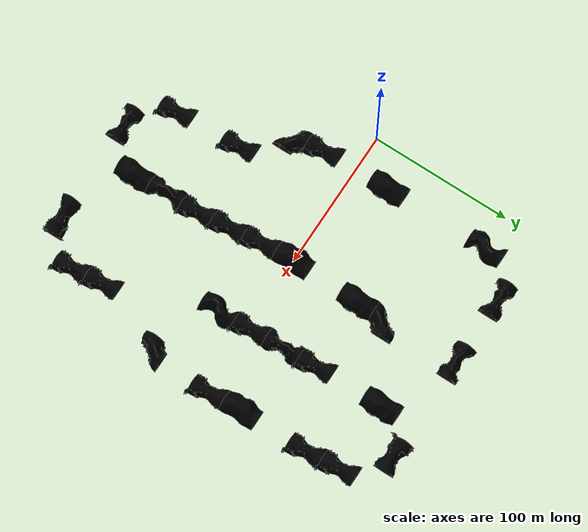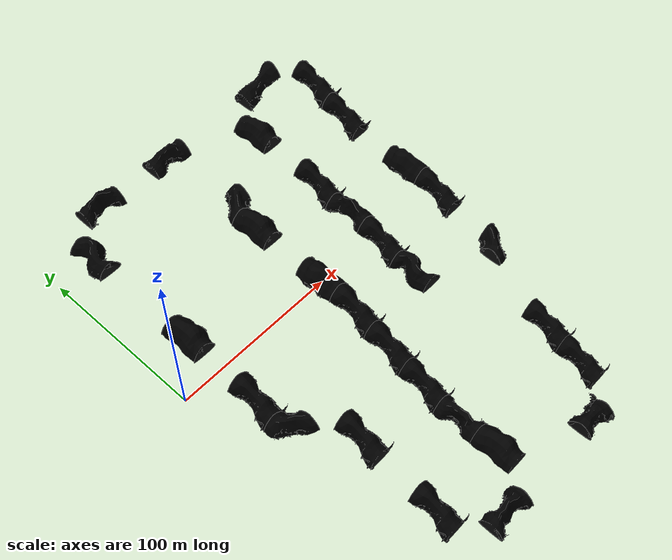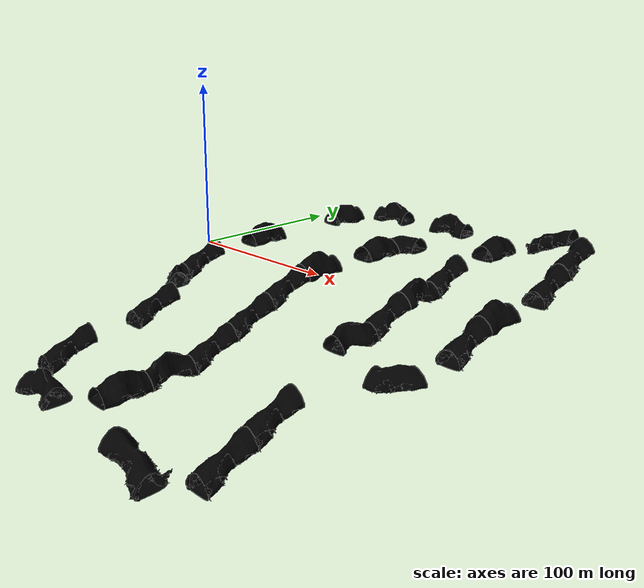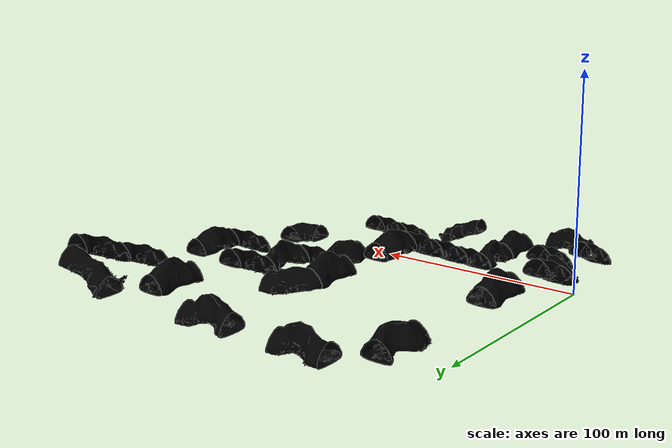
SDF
<sdf version="1.6">
 <world name="simple_cave_02">
  <physics name="1ms" type="ode">
   <max_step_size>0.004</max_step_size>
   <real_time_factor>1.0</real_time_factor>
  </physics>
  <plugin name="ignition::gazebo::systems::Physics" filename="libignition-gazebo-physics-system.so"/>
  <plugin name="ignition::gazebo::systems::UserCommands" filename="libignition-gazebo-user-commands-system.so"/>
  <plugin name="ignition::gazebo::systems::SceneBroadcaster" filename="libignition-gazebo-scene-broadcaster-system.so"/>
  <plugin name="ignition::gazebo::systems::Sensors" filename="libignition-gazebo-sensors-system.so">
   <render_engine>ogre2</render_engine>
  </plugin>
  <plugin name="ignition::gazebo::systems::Imu" filename="libignition-gazebo-imu-system.so"/>
  <scene>
   <ambient>0.35 0.35 0.35 1.0</ambient>
   <background>0.08 0.08 0.08 1.0</background>
   <grid>false</grid>
   <origin_visual>false</origin_visual>
  </scene>
  <atmosphere type="adiabatic">
   <temperature>288</temperature>
   <temperature_gradient>0.3</temperature_gradient>
  </atmosphere>
  <include>
   <name>tile_3</name>
   <uri>https://fuel.ignitionrobotics.org/1.0/OpenRobotics/models/Cave Straight 02 Type B</uri>
   <pose>50.000000 125.000000 0.000000 0 0 1.570796</pose>
  </include>
  <include>
   <name>tile_5</name>
   <uri>https://fuel.ignitionrobotics.org/1.0/OpenRobotics/models/Cave Straight 02 Type B</uri>
   <pose>100.000000 125.000000 0.000000 0 0 -1.570796</pose>
  </include>
  <include>
   <name>tile_8</name>
   <uri>https://fuel.ignitionrobotics.org/1.0/OpenRobotics/models/Cave Elevation Type B</uri>
   <pose>175.000000 125.000000 0.000000 0 0 1.570796</pose>
  </include>
  <include>
   <name>tile_11</name>
   <uri>https://fuel.ignitionrobotics.org/1.0/OpenRobotics/models/Cave Straight 03 Type B</uri>
   <pose>25.000000 100.000000 0.000000 0 0 0.000000</pose>
  </include>
  <include>
   <name>tile_12</name>
   <uri>https://fuel.ignitionrobotics.org/1.0/OpenRobotics/models/Cave Straight 04 Type B</uri>
   <pose>150.000000 100.000000 0.000000 0 0 3.141593</pose>
  </include>
  <include>
   <name>tile_13</name>
   <uri>https://fuel.ignitionrobotics.org/1.0/OpenRobotics/models/Cave Elevation Type B</uri>
   <pose>200.000000 100.000000 0.000000 0 0 3.141593</pose>
  </include>
  <include>
   <name>tile_15</name>
   <uri>https://fuel.ignitionrobotics.org/1.0/OpenRobotics/models/Cave Corner 02 Type B</uri>
   <pose>100.000000 75.000000 0.000000 0 0 -3.141593</pose>
  </include>
  <include>
   <name>tile_18</name>
   <uri>https://fuel.ignitionrobotics.org/1.0/OpenRobotics/models/Cave Elevation Type B</uri>
   <pose>200.000000 75.000000 -10.000000 0 0 3.141593</pose>
  </include>
  <include>
   <name>tile_20</name>
   <uri>https://fuel.ignitionrobotics.org/1.0/OpenRobotics/models/Cave Straight 04 Type B</uri>
   <pose>100.000000 50.000000 0.000000 0 0 3.141593</pose>
  </include>
  <include>
   <name>tile_21</name>
   <uri>https://fuel.ignitionrobotics.org/1.0/OpenRobotics/models/Cave Elevation Type B</uri>
   <pose>150.000000 50.000000 -10.000000 0 0 3.141593</pose>
  </include>
  <include>
   <name>tile_23</name>
   <uri>https://fuel.ignitionrobotics.org/1.0/OpenRobotics/models/Cave Straight 04 Type B</uri>
   <pose>25.000000 25.000000 0.000000 0 0 3.141593</pose>
  </include>
  <include>
   <name>tile_25</name>
   <uri>https://fuel.ignitionrobotics.org/1.0/OpenRobotics/models/Cave Straight 02 Type B</uri>
   <pose>150.000000 25.000000 -10.000000 0 0 0.000000</pose>
  </include>
  <include>
   <name>tile_26</name>
   <uri>https://fuel.ignitionrobotics.org/1.0/OpenRobotics/models/Cave Straight 04 Type B</uri>
   <pose>200.000000 25.000000 -10.000000 0 0 0.000000</pose>
  </include>
  <include>
   <name>tile_28</name>
   <uri>https://fuel.ignitionrobotics.org/1.0/OpenRobotics/models/Cave Straight 04 Type B</uri>
   <pose>100.000000 0.000000 0.000000 0 0 0.000000</pose>
  </include>
  <include>
   <name>tile_29</name>
   <uri>https://fuel.ignitionrobotics.org/1.0/OpenRobotics/models/Cave Elevation Type B</uri>
   <pose>150.000000 0.000000 -20.000000 0 0 3.141593</pose>
  </include>
  <include>
   <name>tile_30</name>
   <uri>https://fuel.ignitionrobotics.org/1.0/OpenRobotics/models/Cave Elevation Type B</uri>
   <pose>200.000000 0.000000 -20.000000 0 0 3.141593</pose>
  </include>
  <include>
   <name>tile_31</name>
   <uri>https://fuel.ignitionrobotics.org/1.0/OpenRobotics/models/Cave Elevation Type B</uri>
   <pose>25.000000 -25.000000 -10.000000 0 0 3.141593</pose>
  </include>
  <include>
   <name>tile_32</name>
   <uri>https://fuel.ignitionrobotics.org/1.0/OpenRobotics/models/Cave Elevation Type B</uri>
   <pose>100.000000 -25.000000 -10.000000 0 0 3.141593</pose>
  </include>
  <include>
   <name>tile_33</name>
   <uri>https://fuel.ignitionrobotics.org/1.0/OpenRobotics/models/Cave Straight 03 Type B</uri>
   <pose>150.000000 -25.000000 -20.000000 0 0 3.141593</pose>
  </include>
  <include>
   <name>tile_35</name>
   <uri>https://fuel.ignitionrobotics.org/1.0/OpenRobotics/models/Cave Corner 02 Type B</uri>
   <pose>25.000000 -50.000000 -10.000000 0 0 -1.570796</pose>
  </include>
  <include>
   <name>tile_37</name>
   <uri>https://fuel.ignitionrobotics.org/1.0/OpenRobotics/models/Cave Elevation Type B</uri>
   <pose>100.000000 -50.000000 -20.000000 0 0 3.141593</pose>
  </include>
  <include>
   <name>tile_40</name>
   <uri>https://fuel.ignitionrobotics.org/1.0/OpenRobotics/models/Cave Corner 02 Type B</uri>
   <pose>200.000000 -50.000000 -20.000000 0 0 0.000000</pose>
  </include>
  <include>
   <name>tile_41</name>
   <uri>https://fuel.ignitionrobotics.org/1.0/OpenRobotics/models/Cave Elevation Type B</uri>
   <pose>50.000000 -75.000000 -20.000000 0 0 3.141593</pose>
  </include>
  <include>
   <name>tile_42</name>
   <uri>https://fuel.ignitionrobotics.org/1.0/OpenRobotics/models/Cave Elevation Type B</uri>
   <pose>100.000000 -75.000000 -30.000000 0 0 3.141593</pose>
  </include>
  <include>
   <name>tile_45</name>
   <uri>https://fuel.ignitionrobotics.org/1.0/OpenRobotics/models/Cave Straight 02 Type B</uri>
   <pose>100.000000 -100.000000 -30.000000 0 0 3.141593</pose>
  </include>
  <include>
   <name>tile_46</name>
   <uri>https://fuel.ignitionrobotics.org/1.0/OpenRobotics/models/Cave Elevation Type B</uri>
   <pose>175.000000 -100.000000 -30.000000 0 0 3.141593</pose>
  </include>
  <include>
   <name>tile_47</name>
   <uri>https://fuel.ignitionrobotics.org/1.0/OpenRobotics/models/Cave Elevation Type B</uri>
   <pose>50.000000 -125.000000 -30.000000 0 0 3.141593</pose>
  </include>
  <include>
   <name>tile_48</name>
   <uri>https://fuel.ignitionrobotics.org/1.0/OpenRobotics/models/Cave Straight 04 Type B</uri>
   <pose>100.000000 -125.000000 -30.000000 0 0 3.141593</pose>
  </include>
  <include>
   <name>tile_49</name>
   <uri>https://fuel.ignitionrobotics.org/1.0/OpenRobotics/models/Cave Elevation Type B</uri>
   <pose>175.000000 -125.000000 -40.000000 0 0 3.141593</pose>
  </include>
  <include>
   <name>tile_51</name>
   <uri>https://fuel.ignitionrobotics.org/1.0/OpenRobotics/models/Cave Straight 02 Type B</uri>
   <pose>75.000000 -150.000000 -30.000000 0 0 1.570796</pose>
  </include>
  <include>
   <name>tile_54</name>
   <uri>https://fuel.ignitionrobotics.org/1.0/OpenRobotics/models/Cave Elevation Type B</uri>
   <pose>150.000000 -150.000000 -40.000000 0 0 -1.570796</pose>
  </include>
  <wind><linear_velocity>0.000000 0.000000 0.000000</linear_velocity></wind>
  <plugin name="ignition::gazebo::systems::WindEffects" filename="libignition-gazebo-wind-effects-system.so">
   <horizontal>
    <magnitude>
     <time_for_rise>10</time_for_rise>
     <sin><amplitude_percent>0.05</amplitude_percent><period>60</period></sin>
     <noise type="gaussian"><mean>0</mean><stddev>0.0002</stddev></noise>
    </magnitude>
    <direction>
     <time_for_rise>30</time_for_rise>
     <sin><amplitude>5</amplitude><period>20</period></sin>
     <noise type="gaussian"><mean>0</mean><stddev>0.03</stddev></noise>
    </direction>
   </horizontal>
   <vertical><noise type="gaussian"><mean>0</mean><stddev>0.03</stddev></noise></vertical>
  </plugin>
 </world>
</sdf>

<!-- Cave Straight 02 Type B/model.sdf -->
<sdf version="1.6">
  <model name="Cave Straight 02 Type B">
    <static>true</static>
    <link name="base_link">
      <collision name="collision">
        <pose>0 0 0 0 0 0</pose>
        <geometry>
          <mesh>
            <uri>model://Cave Straight 02 Type B/meshes/cavestraight02.dae</uri>
            <scale>1.005 1.005 1.0</scale>
          </mesh>
        </geometry>
      </collision>
      <visual name="StriatedRock_visual">
        <geometry>
          <mesh>
            <uri>model://Cave Straight 02 Type B/meshes/cavestraight02.dae</uri>
            <scale>1.005 1.005 1.0</scale>
            <submesh>
              <name>StriatedRock</name>
              <center>false</center>
            </submesh>
          </mesh>
        </geometry>
        <material>
          <diffuse>0 0 0 1</diffuse>
          <specular>0 0 0 1</specular>
          <pbr>
            <metal>
              <albedo_map>model://Cave Straight 02 Type B/materials/textures/StriatedRock_Albedo.png</albedo_map>
              <normal_map>model://Cave Straight 02 Type B/materials/textures/StriatedRock_Normal.png</normal_map>
              <roughness_map>model://Cave Straight 02 Type B/materials/textures/StriatedRock_Roughness.png</roughness_map>
            </metal>
          </pbr>

          <script>
            <uri>model://Cave Straight 02 Type B/materials/scripts/</uri>
            <uri>model://Cave Straight 02 Type B/materials/textures/</uri>
            <name>CaveTile/StriatedRock_Diffuse</name>
          </script>
        </material>
      </visual>
      <visual name="RockPile_visual">
        <geometry>
          <mesh>
            <uri>model://Cave Straight 02 Type B/meshes/cavestraight02.dae</uri>
            <scale>1.005 1.005 1.0</scale>
            <submesh>
              <name>RockPile</name>
              <center>false</center>
            </submesh>
          </mesh>
        </geometry>
        <material>
          <diffuse>0 0 0 1</diffuse>
          <specular>0 0 0 1</specular>
          <pbr>
            <metal>
              <albedo_map>model://Cave Straight 02 Type B/materials/textures/RockPile_Albedo.png</albedo_map>
              <normal_map>model://Cave Straight 02 Type B/materials/textures/RockPile_Normal.png</normal_map>
              <roughness_map>model://Cave Straight 02 Type B/materials/textures/RockPile_Roughness.png</roughness_map>
            </metal>
          </pbr>

          <script>
            <uri>model://Cave Straight 02 Type B/materials/scripts/</uri>
            <uri>model://Cave Straight 02 Type B/materials/textures/</uri>
            <name>CaveTile/RockPile_Diffuse</name>
          </script>
        </material>
      </visual>
      <visual name="CaveWall_visual">
        <geometry>
          <mesh>
            <uri>model://Cave Straight 02 Type B/meshes/cavestraight02.dae</uri>
            <scale>1.005 1.005 1.0</scale>
            <submesh>
              <name>CaveWall</name>
              <center>false</center>
            </submesh>
          </mesh>
        </geometry>
        <material>
          <diffuse>0 0 0 1</diffuse>
          <specular>0 0 0 1</specular>
          <pbr>
            <metal>
              <albedo_map>model://Cave Straight 02 Type B/materials/textures/CaveWall_Albedo.png</albedo_map>
              <normal_map>model://Cave Straight 02 Type B/materials/textures/CaveWall_Normal.png</normal_map>
              <roughness_map>model://Cave Straight 02 Type B/materials/textures/CaveWall_Roughness.png</roughness_map>
            </metal>
          </pbr>

          <script>
            <uri>model://Cave Straight 02 Type B/materials/scripts/</uri>
            <uri>model://Cave Straight 02 Type B/materials/textures/</uri>
            <name>CaveTile/CaveWall_Diffuse</name>
          </script>
        </material>
      </visual>
    </link>
  </model>
</sdf>

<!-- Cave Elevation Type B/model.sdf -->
<sdf version="1.6">
  <model name="Cave Elevation Type B">
    <static>true</static>
    <link name="base_link">
      <collision name="collision">
        <pose>0 0 0 0 0 0</pose>
        <geometry>
          <mesh>
            <uri>model://Cave Elevation Type B/meshes/caveelevation.dae</uri>
            <scale>1.0 1.0 1.0</scale>
          </mesh>
        </geometry>
      </collision>
      <visual name="CaveWall_visual">
        <geometry>
          <mesh>
            <uri>model://Cave Elevation Type B/meshes/caveelevation.dae</uri>
            <submesh>
              <name>CaveWall</name>
              <center>false</center>
            </submesh>
          </mesh>
        </geometry>
        <material>
          <diffuse>0 0 0 1</diffuse>
          <specular>0 0 0 1</specular>
          <pbr>
            <metal>
              <albedo_map>model://Cave Elevation Type B/materials/textures/CaveWall_Albedo.png</albedo_map>
              <normal_map>model://Cave Elevation Type B/materials/textures/CaveWall_Normal.png</normal_map>
              <roughness_map>model://Cave Elevation Type B/materials/textures/CaveWall_Roughness.png</roughness_map>
            </metal>
          </pbr>

          <script>
            <uri>model://Cave Elevation Type B/materials/scripts/</uri>
            <uri>model://Cave Elevation Type B/materials/textures/</uri>
            <name>CaveTile/CaveWall_Diffuse</name>
          </script>
        </material>
      </visual>
      <visual name="RockPile_visual">
        <geometry>
          <mesh>
            <uri>model://Cave Elevation Type B/meshes/caveelevation.dae</uri>
            <submesh>
              <name>RockPile</name>
              <center>false</center>
            </submesh>
          </mesh>
        </geometry>
        <material>
          <diffuse>0 0 0 1</diffuse>
          <specular>0 0 0 1</specular>
          <pbr>
            <metal>
              <albedo_map>model://Cave Elevation Type B/materials/textures/RockPile_Albedo.png</albedo_map>
              <normal_map>model://Cave Elevation Type B/materials/textures/RockPile_Normal.png</normal_map>
              <roughness_map>model://Cave Elevation Type B/materials/textures/RockPile_Roughness.png</roughness_map>
            </metal>
          </pbr>

          <script>
            <uri>model://Cave Elevation Type B/materials/scripts/</uri>
            <uri>model://Cave Elevation Type B/materials/textures/</uri>
            <name>CaveTile/RockPile_Diffuse</name>
          </script>
        </material>
      </visual>
      <visual name="StriatedRock_visual">
        <geometry>
          <mesh>
            <uri>model://Cave Elevation Type B/meshes/caveelevation.dae</uri>
            <submesh>
              <name>StriatedRock</name>
              <center>false</center>
            </submesh>
          </mesh>
        </geometry>
        <material>
          <diffuse>0 0 0 1</diffuse>
          <specular>0 0 0 1</specular>
          <pbr>
            <metal>
              <albedo_map>model://Cave Elevation Type B/materials/textures/StriatedRock_Albedo.png</albedo_map>
              <normal_map>model://Cave Elevation Type B/materials/textures/StriatedRock_Normal.png</normal_map>
              <roughness_map>model://Cave Elevation Type B/materials/textures/StriatedRock_Roughness.png</roughness_map>
            </metal>
          </pbr>

          <script>
            <uri>model://Cave Elevation Type B/materials/scripts/</uri>
            <uri>model://Cave Elevation Type B/materials/textures/</uri>
            <name>CaveTile/StriatedRock_Diffuse</name>
          </script>
        </material>
      </visual>
    </link>

    <plugin filename="libignition-gazebo-performer-detector-system.so" name="ignition::gazebo::systems::PerformerDetector">
      <topic>/subt_performer_detector</topic>
      <pose>0 0 10 0 0 0</pose>
      <geometry>
        <box>
          <size>20 30 20</size>
        </box>
      </geometry>
      <header_data>
        <key>type</key>
        <value>elevation</value>
      </header_data>
    </plugin>
  </model>
</sdf>

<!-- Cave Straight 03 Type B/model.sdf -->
<sdf version="1.6">
  <model name="Cave Straight 03 Type B">
    <static>true</static>
    <link name="base_link">
      <collision name="collision">
        <pose>0 0 0 0 0 0</pose>
        <geometry>
          <mesh>
            <uri>model://Cave Straight 03 Type B/meshes/cavestraight03.dae</uri>
            <scale>1.005 1.005 1.0</scale>
          </mesh>
        </geometry>
      </collision>
      <visual name="StriatedRock_visual">
        <geometry>
          <mesh>
            <uri>model://Cave Straight 03 Type B/meshes/cavestraight03.dae</uri>
            <submesh>
              <name>StriatedRock</name>
              <center>false</center>
            </submesh>
            <scale>1.005 1.005 1.0</scale>
          </mesh>
        </geometry>
        <material>
          <diffuse>0 0 0 1</diffuse>
          <specular>0 0 0 1</specular>
          <pbr>
            <metal>
              <albedo_map>model://Cave Straight 03 Type B/materials/textures/StriatedRock_Albedo.png</albedo_map>
              <normal_map>model://Cave Straight 03 Type B/materials/textures/StriatedRock_Normal.png</normal_map>
              <roughness_map>model://Cave Straight 03 Type B/materials/textures/StriatedRock_Roughness.png</roughness_map>
            </metal>
          </pbr>

          <script>
            <uri>model://Cave Straight 03 Type B/materials/scripts/</uri>
            <uri>model://Cave Straight 03 Type B/materials/textures/</uri>
            <name>CaveTile/StriatedRock_Diffuse</name>
          </script>
        </material>
      </visual>
      <visual name="RockPile_visual">
        <geometry>
          <mesh>
            <uri>model://Cave Straight 03 Type B/meshes/cavestraight03.dae</uri>
            <submesh>
              <name>RockPile</name>
              <center>false</center>
            </submesh>
            <scale>1.005 1.005 1.0</scale>
          </mesh>
        </geometry>
        <material>
          <diffuse>0 0 0 1</diffuse>
          <specular>0 0 0 1</specular>
          <pbr>
            <metal>
              <albedo_map>model://Cave Straight 03 Type B/materials/textures/RockPile_Albedo.png</albedo_map>
              <normal_map>model://Cave Straight 03 Type B/materials/textures/RockPile_Normal.png</normal_map>
              <roughness_map>model://Cave Straight 03 Type B/materials/textures/RockPile_Roughness.png</roughness_map>
            </metal>
          </pbr>

          <script>
            <uri>model://Cave Straight 03 Type B/materials/scripts/</uri>
            <uri>model://Cave Straight 03 Type B/materials/textures/</uri>
            <name>CaveTile/RockPile_Diffuse</name>
          </script>
        </material>
      </visual>
      <visual name="CaveWall_visual">
        <geometry>
          <mesh>
            <uri>model://Cave Straight 03 Type B/meshes/cavestraight03.dae</uri>
            <submesh>
              <name>CaveWall</name>
              <center>false</center>
            </submesh>
            <scale>1.005 1.005 1.0</scale>
          </mesh>
        </geometry>
        <material>
          <diffuse>0 0 0 1</diffuse>
          <specular>0 0 0 1</specular>
          <pbr>
            <metal>
              <albedo_map>model://Cave Straight 03 Type B/materials/textures/CaveWall_Albedo.png</albedo_map>
              <normal_map>model://Cave Straight 03 Type B/materials/textures/CaveWall_Normal.png</normal_map>
              <roughness_map>model://Cave Straight 03 Type B/materials/textures/CaveWall_Roughness.png</roughness_map>
            </metal>
          </pbr>

          <script>
            <uri>model://Cave Straight 03 Type B/materials/scripts/</uri>
            <uri>model://Cave Straight 03 Type B/materials/textures/</uri>
            <name>CaveTile/CaveWall_Diffuse</name>
          </script>
        </material>
      </visual>
    </link>
  </model>
</sdf>

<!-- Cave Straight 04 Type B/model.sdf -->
<sdf version="1.6">
  <model name="Cave Straight 04 Type B">
    <static>true</static>
    <link name="base_link">
      <collision name="collision">
        <pose>0 0 0 0 0 0</pose>
        <geometry>
          <mesh>
            <uri>model://Cave Straight 04 Type B/meshes/cavestraight04.dae</uri>
            <scale>1.0 1.0 1.0</scale>
          </mesh>
        </geometry>
      </collision>
      <visual name="StriatedRock_visual">
        <geometry>
          <mesh>
            <uri>model://Cave Straight 04 Type B/meshes/cavestraight04.dae</uri>
            <submesh>
              <name>StriatedRock</name>
              <center>false</center>
            </submesh>
          </mesh>
        </geometry>
        <material>
          <diffuse>0 0 0 1</diffuse>
          <specular>0 0 0 1</specular>
          <pbr>
            <metal>
              <albedo_map>model://Cave Straight 04 Type B/materials/textures/StriatedRock_Albedo.png</albedo_map>
              <normal_map>model://Cave Straight 04 Type B/materials/textures/StriatedRock_Normal.png</normal_map>
              <roughness_map>model://Cave Straight 04 Type B/materials/textures/StriatedRock_Roughness.png</roughness_map>
            </metal>
          </pbr>

          <script>
            <uri>model://Cave Straight 04 Type B/materials/scripts/</uri>
            <uri>model://Cave Straight 04 Type B/materials/textures/</uri>
            <name>CaveTile/StriatedRock_Diffuse</name>
          </script>
        </material>
      </visual>
      <visual name="RockPile_visual">
        <geometry>
          <mesh>
            <uri>model://Cave Straight 04 Type B/meshes/cavestraight04.dae</uri>
            <submesh>
              <name>RockPile</name>
              <center>false</center>
            </submesh>
          </mesh>
        </geometry>
        <material>
          <diffuse>0 0 0 1</diffuse>
          <specular>0 0 0 1</specular>
          <pbr>
            <metal>
              <albedo_map>model://Cave Straight 04 Type B/materials/textures/RockPile_Albedo.png</albedo_map>
              <normal_map>model://Cave Straight 04 Type B/materials/textures/RockPile_Normal.png</normal_map>
              <roughness_map>model://Cave Straight 04 Type B/materials/textures/RockPile_Roughness.png</roughness_map>
            </metal>
          </pbr>

          <script>
            <uri>model://Cave Straight 04 Type B/materials/scripts/</uri>
            <uri>model://Cave Straight 04 Type B/materials/textures/</uri>
            <name>CaveTile/RockPile_Diffuse</name>
          </script>
        </material>
      </visual>
      <visual name="CaveWall_visual">
        <geometry>
          <mesh>
            <uri>model://Cave Straight 04 Type B/meshes/cavestraight04.dae</uri>
            <submesh>
              <name>CaveWall</name>
              <center>false</center>
            </submesh>
          </mesh>
        </geometry>
        <material>
          <diffuse>0 0 0 1</diffuse>
          <specular>0 0 0 1</specular>
          <pbr>
            <metal>
              <albedo_map>model://Cave Straight 04 Type B/materials/textures/CaveWall_Albedo.png</albedo_map>
              <normal_map>model://Cave Straight 04 Type B/materials/textures/CaveWall_Normal.png</normal_map>
              <roughness_map>model://Cave Straight 04 Type B/materials/textures/CaveWall_Roughness.png</roughness_map>
            </metal>
          </pbr>

          <script>
            <uri>model://Cave Straight 04 Type B/materials/scripts/</uri>
            <uri>model://Cave Straight 04 Type B/materials/textures/</uri>
            <name>CaveTile/CaveWall_Diffuse</name>
          </script>
        </material>
      </visual>
    </link>
  </model>
</sdf>

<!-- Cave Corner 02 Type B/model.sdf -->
<sdf version="1.6">
  <model name="Cave Corner 02 Type B">
    <static>true</static>
    <link name="base_link">
      <collision name="collision">
        <pose>0 0 0 0 0 0</pose>
        <geometry>
          <mesh>
            <uri>model://cave_corner_02/meshes/cavecorner02.dae</uri>
            <scale>1.005 1.005 1.0</scale>
          </mesh>
        </geometry>
      </collision>
      <visual name="CaveWall_visual">
        <geometry>
          <mesh>
            <uri>model://cave_corner_02/meshes/cavecorner02.dae</uri>
            <submesh>
              <name>CaveWall</name>
              <center>false</center>
            </submesh>
            <scale>1.005 1.005 1.0</scale>
          </mesh>
        </geometry>
        <material>
          <diffuse>0 0 0 1</diffuse>
          <specular>0 0 0 1</specular>
          <pbr>
            <metal>
              <albedo_map>model://cave_corner_02/materials/textures/CaveWall_Albedo.png</albedo_map>
              <normal_map>model://cave_corner_02/materials/textures/CaveWall_Normal.png</normal_map>
              <roughness_map>model://cave_corner_02/materials/textures/CaveWall_Roughness.png</roughness_map>
            </metal>
          </pbr>

          <script>
            <uri>model://cave_corner_02/materials/scripts/</uri>
            <uri>model://cave_corner_02/materials/textures/</uri>
            <name>CaveTile/CaveWall_Diffuse</name>
          </script>
        </material>
      </visual>
      <visual name="StriatedRock_visual">
        <geometry>
          <mesh>
            <uri>model://cave_corner_02/meshes/cavecorner02.dae</uri>
            <submesh>
              <name>StriatedRock</name>
              <center>false</center>
            </submesh>
            <scale>1.005 1.005 1.0</scale>
          </mesh>
        </geometry>
        <material>
          <diffuse>0 0 0 1</diffuse>
          <specular>0 0 0 1</specular>
          <pbr>
            <metal>
              <albedo_map>model://cave_corner_02/materials/textures/StriatedRock_Albedo.png</albedo_map>
              <normal_map>model://cave_corner_02/materials/textures/StriatedRock_Normal.png</normal_map>
              <roughness_map>model://cave_corner_02/materials/textures/StriatedRock_Roughness.png</roughness_map>
            </metal>
          </pbr>

          <script>
            <uri>model://cave_corner_02/materials/scripts/</uri>
            <uri>model://cave_corner_02/materials/textures/</uri>
            <name>CaveTile/StriatedRock_Diffuse</name>
          </script>
        </material>
      </visual>
      <visual name="RockPile_visual">
        <geometry>
          <mesh>
            <uri>model://cave_corner_02/meshes/cavecorner02.dae</uri>
            <submesh>
              <name>RockPile</name>
              <center>false</center>
            </submesh>
            <scale>1.005 1.005 1.0</scale>
          </mesh>
        </geometry>
        <material>
          <diffuse>0 0 0 1</diffuse>
          <specular>0 0 0 1</specular>
          <pbr>
            <metal>
              <albedo_map>model://cave_corner_02/materials/textures/RockPile_Albedo.png</albedo_map>
              <normal_map>model://cave_corner_02/materials/textures/RockPile_Normal.png</normal_map>
              <roughness_map>model://cave_corner_02/materials/textures/RockPile_Roughness.png</roughness_map>
            </metal>
          </pbr>

          <script>
            <uri>model://cave_corner_02/materials/scripts/</uri>
            <uri>model://cave_corner_02/materials/textures/</uri>
            <name>CaveTile/RockPile_Diffuse</name>
          </script>
        </material>
      </visual>
    </link>
  </model>
</sdf>
